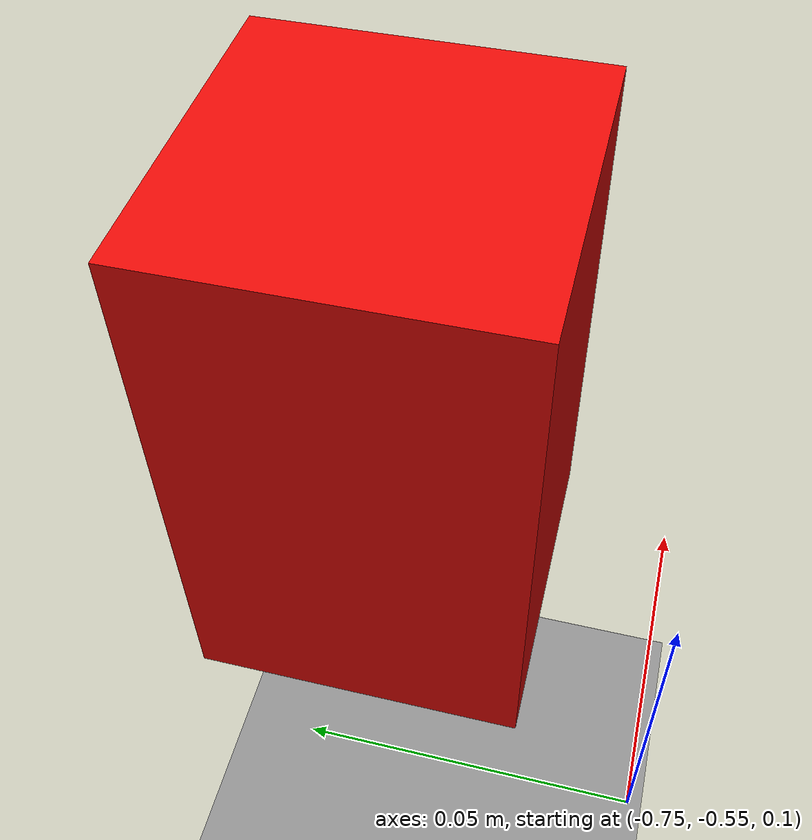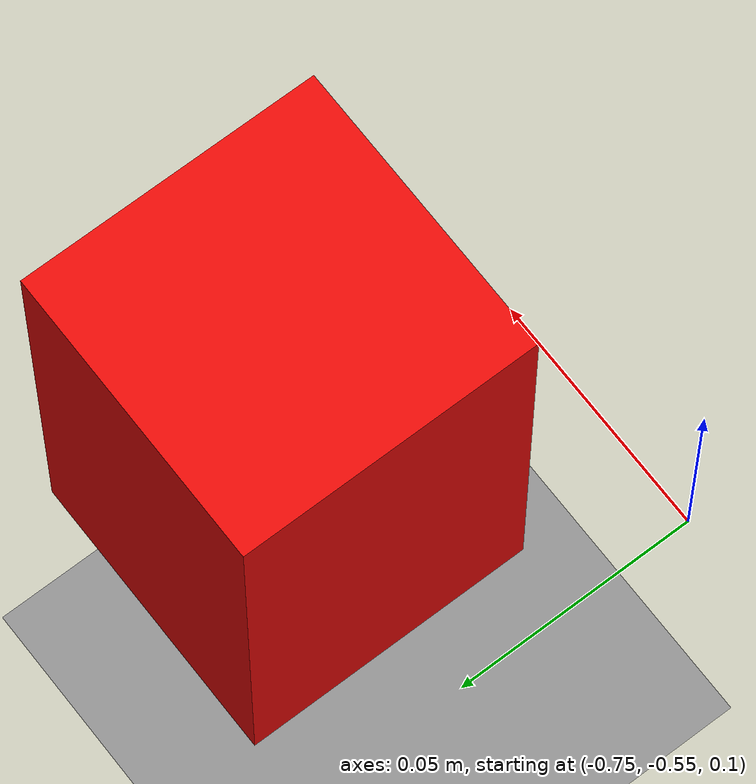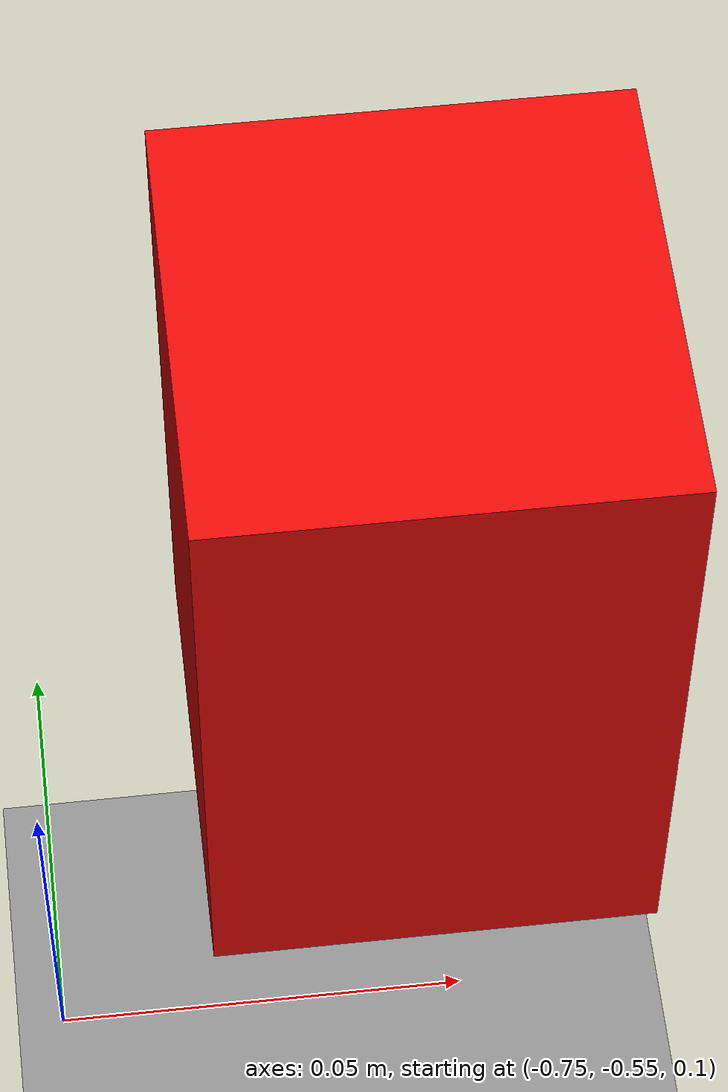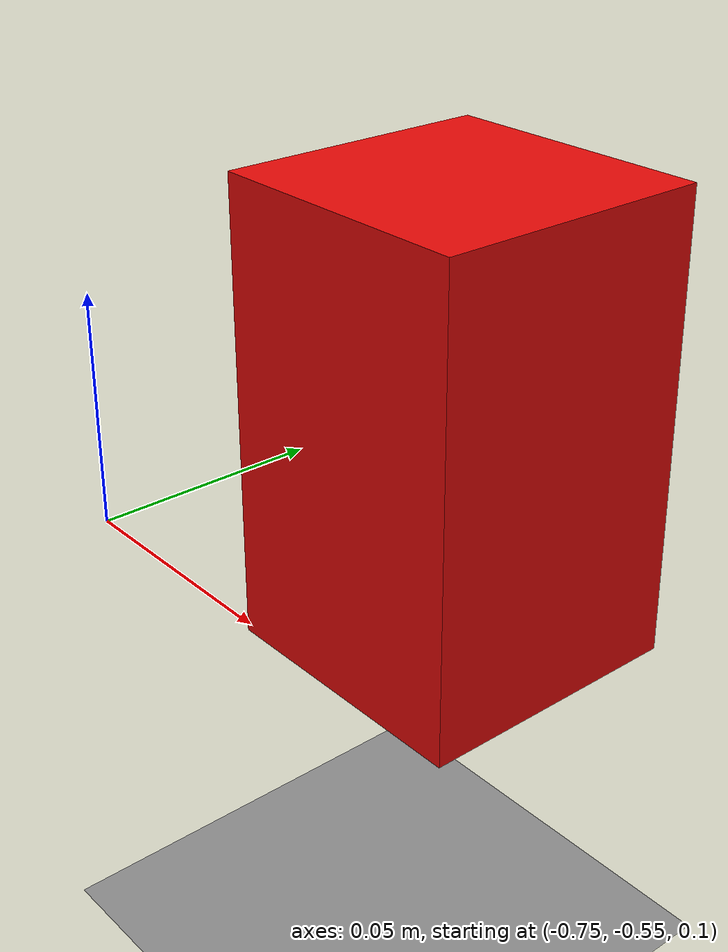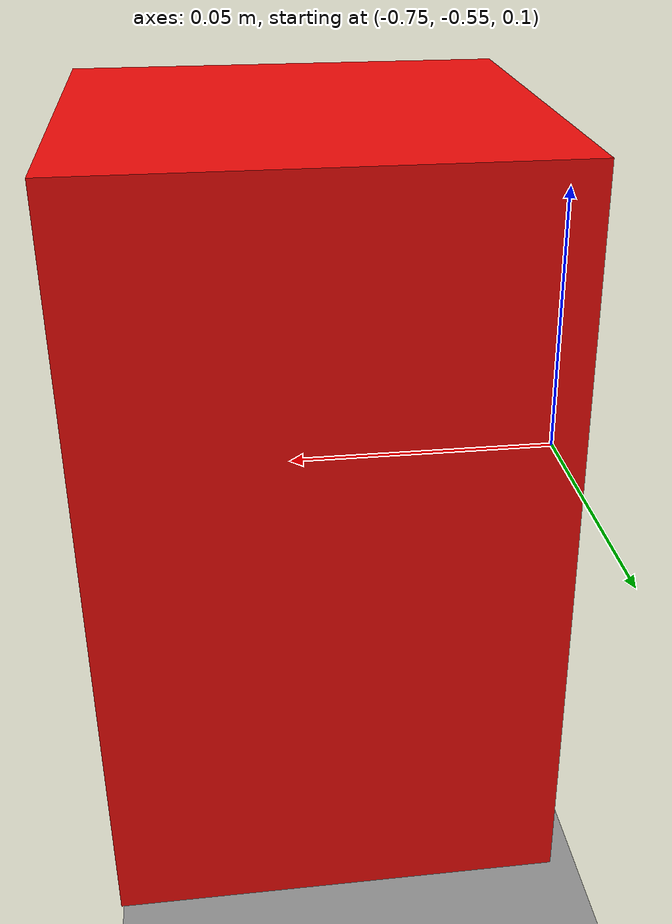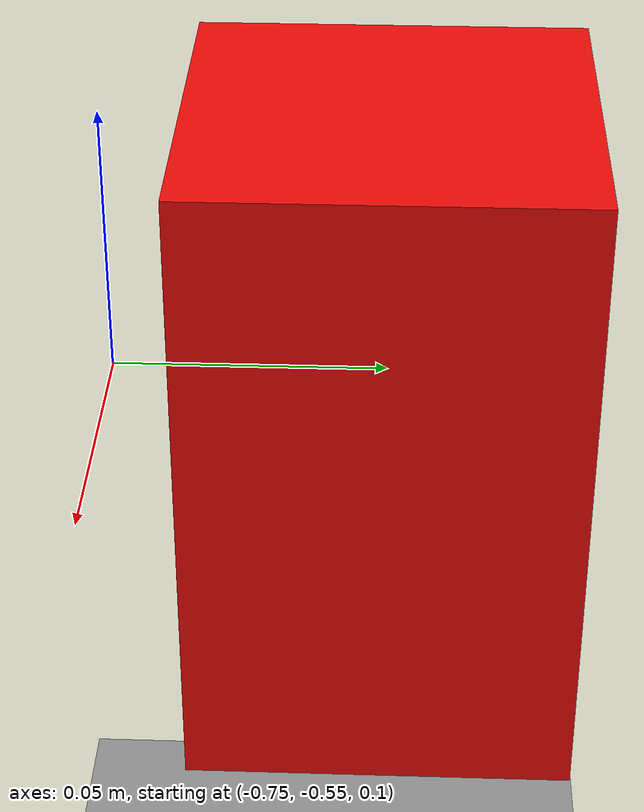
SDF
<?xml version="1.0"?>
<sdf version="1.6">
  <world name="default">
    <light name="sun" type="directional">
      <cast_shadows>1</cast_shadows>
      <pose>0 0 10 0 0 0</pose>
      <diffuse>0.8 0.8 0.8 1</diffuse>
      <specular>0.1 0.1 0.1 1</specular>
      <attenuation>
        <range>1000</range>
        <constant>0.9</constant>
        <linear>0.01</linear>
        <quadratic>0.001</quadratic>
      </attenuation>
      <direction>-0.5 0.5 -1</direction>
    </light>

    <model name="ground_plane">
      <static>1</static>
      <link name="link">
        <collision name="collision">
          <geometry>
            <plane>
              <normal>0 0 1</normal>
              <size>100 100</size>
            </plane>
          </geometry>
          <surface>
            <friction>
              <ode>
                <mu>100</mu>
                <mu2>50</mu2>
              </ode>
            </friction>
          </surface>
        </collision>
        <visual name="visual">
          <cast_shadows>0</cast_shadows>
          <geometry>
            <plane>
              <normal>0 0 1</normal>
              <size>100 100</size>
            </plane>
          </geometry>
          <material>
            <ambient>0.55 0.55 0.55 1</ambient>
            <diffuse>0.55 0.55 0.55 1</diffuse>
          </material>
        </visual>
      </link>
    </model>

    <model name="grasp_test_cube">
      <static>1</static>
      <pose>-0.70 -0.50 0.125 0 0 0</pose>
      <link name="link">
        <collision name="collision">
          <geometry>
            <box>
              <size>0.06 0.06 0.10</size>
            </box>
          </geometry>
        </collision>
        <visual name="visual">
          <geometry>
            <box>
              <size>0.06 0.06 0.10</size>
            </box>
          </geometry>
          <material>
            <ambient>0.9 0.04 0.03 1</ambient>
            <diffuse>0.9 0.04 0.03 1</diffuse>
          </material>
        </visual>
      </link>
    </model>

    <gravity>0 0 -9.8</gravity>
    <magnetic_field>6e-06 2.3e-05 -4.2e-05</magnetic_field>
    <atmosphere type="adiabatic"/>
    <physics name="default_physics" default="0" type="ode">
      <max_step_size>0.001</max_step_size>
      <real_time_factor>1</real_time_factor>
      <real_time_update_rate>1000</real_time_update_rate>
    </physics>
    <plugin
      filename="ignition-gazebo-physics-system"
      name="gz::sim::systems::Physics">
    </plugin>
    <plugin
      filename="ignition-gazebo-user-commands-system"
      name="gz::sim::systems::UserCommands">
    </plugin>
    <plugin
      filename="ignition-gazebo-scene-broadcaster-system"
      name="gz::sim::systems::SceneBroadcaster">
    </plugin>
    <plugin
      filename="ignition-gazebo-sensors-system"
      name="gz::sim::systems::Sensors">
      <render_engine>ogre2</render_engine>
    </plugin>
    <plugin
      filename="ignition-gazebo-imu-system"
      name="gz::sim::systems::Imu">
    </plugin>
    <scene>
      <ambient>0.4 0.4 0.4 1</ambient>
      <background>0.7 0.7 0.7 1</background>
      <shadows>false</shadows>
    </scene>
  </world>
</sdf>
